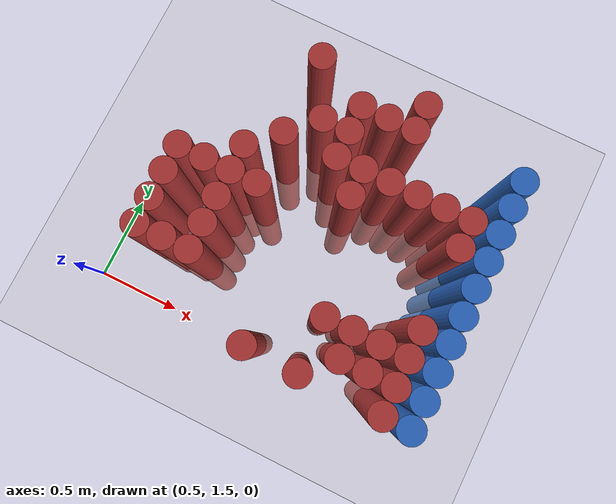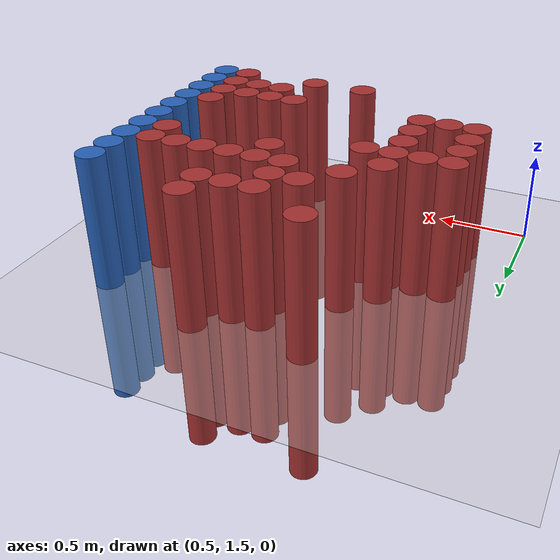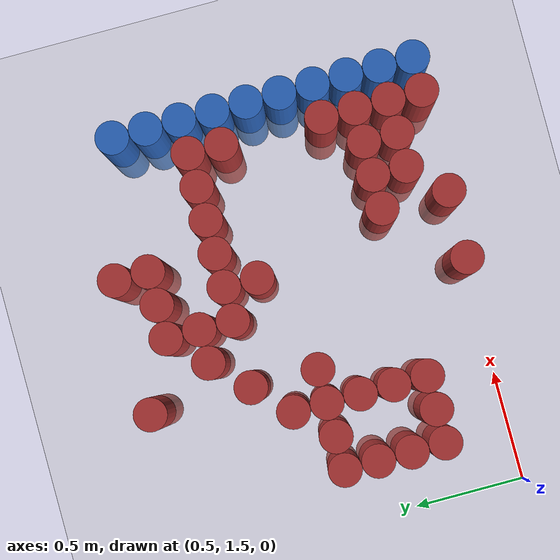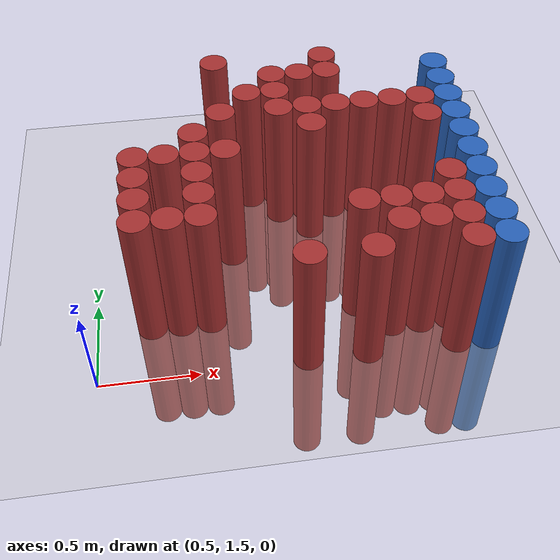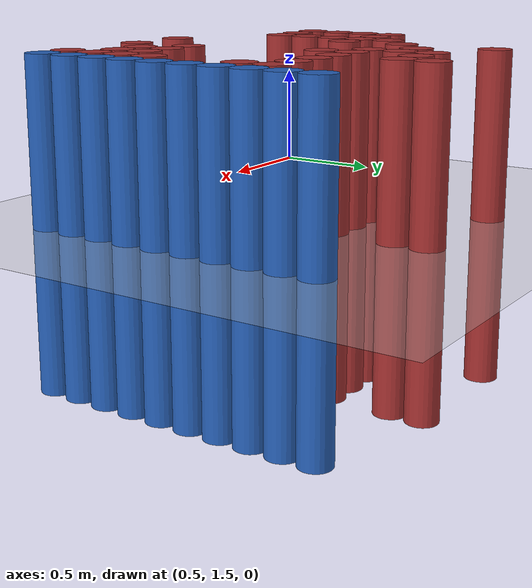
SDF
<sdf version="1.6">
 <world name="default">
  <model name="ground_plane">
   <static>1</static>
   <link name="link">
    <collision name="collision">
     <geometry><plane><normal>0 0 1</normal><size>100 100</size></plane></geometry>
     <surface><friction><ode><mu>100</mu><mu2>50</mu2></ode></friction></surface>
    </collision>
    <visual name="visual">
     <cast_shadows>0</cast_shadows>
     <geometry><plane><normal>0 0 1</normal><size>100 100</size></plane></geometry>
     <material>
      <script><uri>file://media/materials/scripts/gazebo.material</uri><name>Gazebo/Grey</name></script>
     </material>
    </visual>
   </link>
  </model>
  <model name="unit_cylinder_173">
   <static>1</static>
   <pose>0.775000 1.825000 0.000000 0.000000 0.000000 0.000000</pose>
   <link name="link">
    <inertial>
     <mass>1</mass>
     <inertia><ixx>0.145833</ixx><ixy>0</ixy><ixz>0</ixz><iyy>0.145833</iyy><iyz>0</iyz><izz>0.125</izz></inertia>
    </inertial>
    <collision name="collision">
     <geometry><cylinder><radius>0.075000</radius><length>1.5</length></cylinder></geometry>
    </collision>
    <visual name="visual">
     <geometry><cylinder><radius>0.075000</radius><length>1.5</length></cylinder></geometry>
     <material>
      <ambient>0.648000 0.192000 0.192000 1</ambient>
      <diffuse>0.648000 0.192000 0.192000 1</diffuse>
     </material>
     <material>
      <script><name>Gazebo/Grey</name><uri>file://media/materials/scripts/gazebo.material</uri></script>
     </material>
    </visual>
   </link>
  </model>
  <model name="unit_cylinder_174">
   <static>1</static>
   <pose>0.775000 1.975000 0.000000 0.000000 0.000000 0.000000</pose>
   <link name="link">
    <inertial>
     <mass>1</mass>
     <inertia><ixx>0.145833</ixx><ixy>0</ixy><ixz>0</ixz><iyy>0.145833</iyy><iyz>0</iyz><izz>0.125</izz></inertia>
    </inertial>
    <collision name="collision">
     <geometry><cylinder><radius>0.075000</radius><length>1.5</length></cylinder></geometry>
    </collision>
    <visual name="visual">
     <geometry><cylinder><radius>0.075000</radius><length>1.5</length></cylinder></geometry>
     <material>
      <ambient>0.648000 0.192000 0.192000 1</ambient>
      <diffuse>0.648000 0.192000 0.192000 1</diffuse>
     </material>
     <material>
      <script><name>Gazebo/Grey</name><uri>file://media/materials/scripts/gazebo.material</uri></script>
     </material>
    </visual>
   </link>
  </model>
  <model name="unit_cylinder_175">
   <static>1</static>
   <pose>0.775000 2.125000 0.000000 0.000000 0.000000 0.000000</pose>
   <link name="link">
    <inertial>
     <mass>1</mass>
     <inertia><ixx>0.145833</ixx><ixy>0</ixy><ixz>0</ixz><iyy>0.145833</iyy><iyz>0</iyz><izz>0.125</izz></inertia>
    </inertial>
    <collision name="collision">
     <geometry><cylinder><radius>0.075000</radius><length>1.5</length></cylinder></geometry>
    </collision>
    <visual name="visual">
     <geometry><cylinder><radius>0.075000</radius><length>1.5</length></cylinder></geometry>
     <material>
      <ambient>0.648000 0.192000 0.192000 1</ambient>
      <diffuse>0.648000 0.192000 0.192000 1</diffuse>
     </material>
     <material>
      <script><name>Gazebo/Grey</name><uri>file://media/materials/scripts/gazebo.material</uri></script>
     </material>
    </visual>
   </link>
  </model>
  <model name="unit_cylinder_176">
   <static>1</static>
   <pose>0.775000 2.275000 0.000000 0.000000 0.000000 0.000000</pose>
   <link name="link">
    <inertial>
     <mass>1</mass>
     <inertia><ixx>0.145833</ixx><ixy>0</ixy><ixz>0</ixz><iyy>0.145833</iyy><iyz>0</iyz><izz>0.125</izz></inertia>
    </inertial>
    <collision name="collision">
     <geometry><cylinder><radius>0.075000</radius><length>1.5</length></cylinder></geometry>
    </collision>
    <visual name="visual">
     <geometry><cylinder><radius>0.075000</radius><length>1.5</length></cylinder></geometry>
     <material>
      <ambient>0.648000 0.192000 0.192000 1</ambient>
      <diffuse>0.648000 0.192000 0.192000 1</diffuse>
     </material>
     <material>
      <script><name>Gazebo/Grey</name><uri>file://media/materials/scripts/gazebo.material</uri></script>
     </material>
    </visual>
   </link>
  </model>
  <model name="unit_cylinder_177">
   <static>1</static>
   <pose>0.925000 1.825000 0.000000 0.000000 0.000000 0.000000</pose>
   <link name="link">
    <inertial>
     <mass>1</mass>
     <inertia><ixx>0.145833</ixx><ixy>0</ixy><ixz>0</ixz><iyy>0.145833</iyy><iyz>0</iyz><izz>0.125</izz></inertia>
    </inertial>
    <collision name="collision">
     <geometry><cylinder><radius>0.075000</radius><length>1.5</length></cylinder></geometry>
    </collision>
    <visual name="visual">
     <geometry><cylinder><radius>0.075000</radius><length>1.5</length></cylinder></geometry>
     <material>
      <ambient>0.648000 0.192000 0.192000 1</ambient>
      <diffuse>0.648000 0.192000 0.192000 1</diffuse>
     </material>
     <material>
      <script><name>Gazebo/Grey</name><uri>file://media/materials/scripts/gazebo.material</uri></script>
     </material>
    </visual>
   </link>
  </model>
  <model name="unit_cylinder_178">
   <static>1</static>
   <pose>0.925000 2.275000 0.000000 0.000000 0.000000 0.000000</pose>
   <link name="link">
    <inertial>
     <mass>1</mass>
     <inertia><ixx>0.145833</ixx><ixy>0</ixy><ixz>0</ixz><iyy>0.145833</iyy><iyz>0</iyz><izz>0.125</izz></inertia>
    </inertial>
    <collision name="collision">
     <geometry><cylinder><radius>0.075000</radius><length>1.5</length></cylinder></geometry>
    </collision>
    <visual name="visual">
     <geometry><cylinder><radius>0.075000</radius><length>1.5</length></cylinder></geometry>
     <material>
      <ambient>0.648000 0.192000 0.192000 1</ambient>
      <diffuse>0.648000 0.192000 0.192000 1</diffuse>
     </material>
     <material>
      <script><name>Gazebo/Grey</name><uri>file://media/materials/scripts/gazebo.material</uri></script>
     </material>
    </visual>
   </link>
  </model>
  <model name="unit_cylinder_179">
   <static>1</static>
   <pose>1.075000 1.825000 0.000000 0.000000 0.000000 0.000000</pose>
   <link name="link">
    <inertial>
     <mass>1</mass>
     <inertia><ixx>0.145833</ixx><ixy>0</ixy><ixz>0</ixz><iyy>0.145833</iyy><iyz>0</iyz><izz>0.125</izz></inertia>
    </inertial>
    <collision name="collision">
     <geometry><cylinder><radius>0.075000</radius><length>1.5</length></cylinder></geometry>
    </collision>
    <visual name="visual">
     <geometry><cylinder><radius>0.075000</radius><length>1.5</length></cylinder></geometry>
     <material>
      <ambient>0.648000 0.192000 0.192000 1</ambient>
      <diffuse>0.648000 0.192000 0.192000 1</diffuse>
     </material>
     <material>
      <script><name>Gazebo/Grey</name><uri>file://media/materials/scripts/gazebo.material</uri></script>
     </material>
    </visual>
   </link>
  </model>
  <model name="unit_cylinder_180">
   <static>1</static>
   <pose>1.075000 1.975000 0.000000 0.000000 0.000000 0.000000</pose>
   <link name="link">
    <inertial>
     <mass>1</mass>
     <inertia><ixx>0.145833</ixx><ixy>0</ixy><ixz>0</ixz><iyy>0.145833</iyy><iyz>0</iyz><izz>0.125</izz></inertia>
    </inertial>
    <collision name="collision">
     <geometry><cylinder><radius>0.075000</radius><length>1.5</length></cylinder></geometry>
    </collision>
    <visual name="visual">
     <geometry><cylinder><radius>0.075000</radius><length>1.5</length></cylinder></geometry>
     <material>
      <ambient>0.648000 0.192000 0.192000 1</ambient>
      <diffuse>0.648000 0.192000 0.192000 1</diffuse>
     </material>
     <material>
      <script><name>Gazebo/Grey</name><uri>file://media/materials/scripts/gazebo.material</uri></script>
     </material>
    </visual>
   </link>
  </model>
  <model name="unit_cylinder_181">
   <static>1</static>
   <pose>1.075000 2.125000 0.000000 0.000000 0.000000 0.000000</pose>
   <link name="link">
    <inertial>
     <mass>1</mass>
     <inertia><ixx>0.145833</ixx><ixy>0</ixy><ixz>0</ixz><iyy>0.145833</iyy><iyz>0</iyz><izz>0.125</izz></inertia>
    </inertial>
    <collision name="collision">
     <geometry><cylinder><radius>0.075000</radius><length>1.5</length></cylinder></geometry>
    </collision>
    <visual name="visual">
     <geometry><cylinder><radius>0.075000</radius><length>1.5</length></cylinder></geometry>
     <material>
      <ambient>0.648000 0.192000 0.192000 1</ambient>
      <diffuse>0.648000 0.192000 0.192000 1</diffuse>
     </material>
     <material>
      <script><name>Gazebo/Grey</name><uri>file://media/materials/scripts/gazebo.material</uri></script>
     </material>
    </visual>
   </link>
  </model>
  <model name="unit_cylinder_182">
   <static>1</static>
   <pose>1.075000 2.275000 0.000000 0.000000 0.000000 0.000000</pose>
   <link name="link">
    <inertial>
     <mass>1</mass>
     <inertia><ixx>0.145833</ixx><ixy>0</ixy><ixz>0</ixz><iyy>0.145833</iyy><iyz>0</iyz><izz>0.125</izz></inertia>
    </inertial>
    <collision name="collision">
     <geometry><cylinder><radius>0.075000</radius><length>1.5</length></cylinder></geometry>
    </collision>
    <visual name="visual">
     <geometry><cylinder><radius>0.075000</radius><length>1.5</length></cylinder></geometry>
     <material>
      <ambient>0.648000 0.192000 0.192000 1</ambient>
      <diffuse>0.648000 0.192000 0.192000 1</diffuse>
     </material>
     <material>
      <script><name>Gazebo/Grey</name><uri>file://media/materials/scripts/gazebo.material</uri></script>
     </material>
    </visual>
   </link>
  </model>
  <model name="unit_cylinder_183">
   <static>1</static>
   <pose>1.075000 2.425000 0.000000 0.000000 0.000000 0.000000</pose>
   <link name="link">
    <inertial>
     <mass>1</mass>
     <inertia><ixx>0.145833</ixx><ixy>0</ixy><ixz>0</ixz><iyy>0.145833</iyy><iyz>0</iyz><izz>0.125</izz></inertia>
    </inertial>
    <collision name="collision">
     <geometry><cylinder><radius>0.075000</radius><length>1.5</length></cylinder></geometry>
    </collision>
    <visual name="visual">
     <geometry><cylinder><radius>0.075000</radius><length>1.5</length></cylinder></geometry>
     <material>
      <ambient>0.648000 0.192000 0.192000 1</ambient>
      <diffuse>0.648000 0.192000 0.192000 1</diffuse>
     </material>
     <material>
      <script><name>Gazebo/Grey</name><uri>file://media/materials/scripts/gazebo.material</uri></script>
     </material>
    </visual>
   </link>
  </model>
  <model name="unit_cylinder_190">
   <static>1</static>
   <pose>1.225000 2.275000 0.000000 0.000000 0.000000 0.000000</pose>
   <link name="link">
    <inertial>
     <mass>1</mass>
     <inertia><ixx>0.145833</ixx><ixy>0</ixy><ixz>0</ixz><iyy>0.145833</iyy><iyz>0</iyz><izz>0.125</izz></inertia>
    </inertial>
    <collision name="collision">
     <geometry><cylinder><radius>0.075000</radius><length>1.5</length></cylinder></geometry>
    </collision>
    <visual name="visual">
     <geometry><cylinder><radius>0.075000</radius><length>1.5</length></cylinder></geometry>
     <material>
      <ambient>0.648000 0.192000 0.192000 1</ambient>
      <diffuse>0.648000 0.192000 0.192000 1</diffuse>
     </material>
     <material>
      <script><name>Gazebo/Grey</name><uri>file://media/materials/scripts/gazebo.material</uri></script>
     </material>
    </visual>
   </link>
  </model>
  <model name="unit_cylinder_191">
   <static>1</static>
   <pose>1.225000 2.575000 0.000000 0.000000 0.000000 0.000000</pose>
   <link name="link">
    <inertial>
     <mass>1</mass>
     <inertia><ixx>0.145833</ixx><ixy>0</ixy><ixz>0</ixz><iyy>0.145833</iyy><iyz>0</iyz><izz>0.125</izz></inertia>
    </inertial>
    <collision name="collision">
     <geometry><cylinder><radius>0.075000</radius><length>1.5</length></cylinder></geometry>
    </collision>
    <visual name="visual">
     <geometry><cylinder><radius>0.075000</radius><length>1.5</length></cylinder></geometry>
     <material>
      <ambient>0.648000 0.192000 0.192000 1</ambient>
      <diffuse>0.648000 0.192000 0.192000 1</diffuse>
     </material>
     <material>
      <script><name>Gazebo/Grey</name><uri>file://media/materials/scripts/gazebo.material</uri></script>
     </material>
    </visual>
   </link>
  </model>
  <model name="unit_cylinder_192">
   <static>1</static>
   <pose>1.225000 3.025000 0.000000 0.000000 0.000000 0.000000</pose>
   <link name="link">
    <inertial>
     <mass>1</mass>
     <inertia><ixx>0.145833</ixx><ixy>0</ixy><ixz>0</ixz><iyy>0.145833</iyy><iyz>0</iyz><izz>0.125</izz></inertia>
    </inertial>
    <collision name="collision">
     <geometry><cylinder><radius>0.075000</radius><length>1.5</length></cylinder></geometry>
    </collision>
    <visual name="visual">
     <geometry><cylinder><radius>0.075000</radius><length>1.5</length></cylinder></geometry>
     <material>
      <ambient>0.648000 0.192000 0.192000 1</ambient>
      <diffuse>0.648000 0.192000 0.192000 1</diffuse>
     </material>
     <material>
      <script><name>Gazebo/Grey</name><uri>file://media/materials/scripts/gazebo.material</uri></script>
     </material>
    </visual>
   </link>
  </model>
  <model name="unit_cylinder_196">
   <static>1</static>
   <pose>1.375000 2.725000 0.000000 0.000000 0.000000 0.000000</pose>
   <link name="link">
    <inertial>
     <mass>1</mass>
     <inertia><ixx>0.145833</ixx><ixy>0</ixy><ixz>0</ixz><iyy>0.145833</iyy><iyz>0</iyz><izz>0.125</izz></inertia>
    </inertial>
    <collision name="collision">
     <geometry><cylinder><radius>0.075000</radius><length>1.5</length></cylinder></geometry>
    </collision>
    <visual name="visual">
     <geometry><cylinder><radius>0.075000</radius><length>1.5</length></cylinder></geometry>
     <material>
      <ambient>0.648000 0.192000 0.192000 1</ambient>
      <diffuse>0.648000 0.192000 0.192000 1</diffuse>
     </material>
     <material>
      <script><name>Gazebo/Grey</name><uri>file://media/materials/scripts/gazebo.material</uri></script>
     </material>
    </visual>
   </link>
  </model>
  <model name="unit_cylinder_206">
   <static>1</static>
   <pose>1.525000 1.525000 0.000000 0.000000 0.000000 0.000000</pose>
   <link name="link">
    <inertial>
     <mass>1</mass>
     <inertia><ixx>0.145833</ixx><ixy>0</ixy><ixz>0</ixz><iyy>0.145833</iyy><iyz>0</iyz><izz>0.125</izz></inertia>
    </inertial>
    <collision name="collision">
     <geometry><cylinder><radius>0.075000</radius><length>1.5</length></cylinder></geometry>
    </collision>
    <visual name="visual">
     <geometry><cylinder><radius>0.075000</radius><length>1.5</length></cylinder></geometry>
     <material>
      <ambient>0.648000 0.192000 0.192000 1</ambient>
      <diffuse>0.648000 0.192000 0.192000 1</diffuse>
     </material>
     <material>
      <script><name>Gazebo/Grey</name><uri>file://media/materials/scripts/gazebo.material</uri></script>
     </material>
    </visual>
   </link>
  </model>
  <model name="unit_cylinder_207">
   <static>1</static>
   <pose>1.525000 2.575000 0.000000 0.000000 0.000000 0.000000</pose>
   <link name="link">
    <inertial>
     <mass>1</mass>
     <inertia><ixx>0.145833</ixx><ixy>0</ixy><ixz>0</ixz><iyy>0.145833</iyy><iyz>0</iyz><izz>0.125</izz></inertia>
    </inertial>
    <collision name="collision">
     <geometry><cylinder><radius>0.075000</radius><length>1.5</length></cylinder></geometry>
    </collision>
    <visual name="visual">
     <geometry><cylinder><radius>0.075000</radius><length>1.5</length></cylinder></geometry>
     <material>
      <ambient>0.648000 0.192000 0.192000 1</ambient>
      <diffuse>0.648000 0.192000 0.192000 1</diffuse>
     </material>
     <material>
      <script><name>Gazebo/Grey</name><uri>file://media/materials/scripts/gazebo.material</uri></script>
     </material>
    </visual>
   </link>
  </model>
  <model name="unit_cylinder_208">
   <static>1</static>
   <pose>1.525000 2.725000 0.000000 0.000000 0.000000 0.000000</pose>
   <link name="link">
    <inertial>
     <mass>1</mass>
     <inertia><ixx>0.145833</ixx><ixy>0</ixy><ixz>0</ixz><iyy>0.145833</iyy><iyz>0</iyz><izz>0.125</izz></inertia>
    </inertial>
    <collision name="collision">
     <geometry><cylinder><radius>0.075000</radius><length>1.5</length></cylinder></geometry>
    </collision>
    <visual name="visual">
     <geometry><cylinder><radius>0.075000</radius><length>1.5</length></cylinder></geometry>
     <material>
      <ambient>0.648000 0.192000 0.192000 1</ambient>
      <diffuse>0.648000 0.192000 0.192000 1</diffuse>
     </material>
     <material>
      <script><name>Gazebo/Grey</name><uri>file://media/materials/scripts/gazebo.material</uri></script>
     </material>
    </visual>
   </link>
  </model>
  <model name="unit_cylinder_209">
   <static>1</static>
   <pose>1.525000 2.875000 0.000000 0.000000 0.000000 0.000000</pose>
   <link name="link">
    <inertial>
     <mass>1</mass>
     <inertia><ixx>0.145833</ixx><ixy>0</ixy><ixz>0</ixz><iyy>0.145833</iyy><iyz>0</iyz><izz>0.125</izz></inertia>
    </inertial>
    <collision name="collision">
     <geometry><cylinder><radius>0.075000</radius><length>1.5</length></cylinder></geometry>
    </collision>
    <visual name="visual">
     <geometry><cylinder><radius>0.075000</radius><length>1.5</length></cylinder></geometry>
     <material>
      <ambient>0.648000 0.192000 0.192000 1</ambient>
      <diffuse>0.648000 0.192000 0.192000 1</diffuse>
     </material>
     <material>
      <script><name>Gazebo/Grey</name><uri>file://media/materials/scripts/gazebo.material</uri></script>
     </material>
    </visual>
   </link>
  </model>
  <model name="unit_cylinder_216">
   <static>1</static>
   <pose>1.675000 2.425000 0.000000 0.000000 0.000000 0.000000</pose>
   <link name="link">
    <inertial>
     <mass>1</mass>
     <inertia><ixx>0.145833</ixx><ixy>0</ixy><ixz>0</ixz><iyy>0.145833</iyy><iyz>0</iyz><izz>0.125</izz></inertia>
    </inertial>
    <collision name="collision">
     <geometry><cylinder><radius>0.075000</radius><length>1.5</length></cylinder></geometry>
    </collision>
    <visual name="visual">
     <geometry><cylinder><radius>0.075000</radius><length>1.5</length></cylinder></geometry>
     <material>
      <ambient>0.648000 0.192000 0.192000 1</ambient>
      <diffuse>0.648000 0.192000 0.192000 1</diffuse>
     </material>
     <material>
      <script><name>Gazebo/Grey</name><uri>file://media/materials/scripts/gazebo.material</uri></script>
     </material>
    </visual>
   </link>
  </model>
  <model name="unit_cylinder_217">
   <static>1</static>
   <pose>1.675000 2.575000 0.000000 0.000000 0.000000 0.000000</pose>
   <link name="link">
    <inertial>
     <mass>1</mass>
     <inertia><ixx>0.145833</ixx><ixy>0</ixy><ixz>0</ixz><iyy>0.145833</iyy><iyz>0</iyz><izz>0.125</izz></inertia>
    </inertial>
    <collision name="collision">
     <geometry><cylinder><radius>0.075000</radius><length>1.5</length></cylinder></geometry>
    </collision>
    <visual name="visual">
     <geometry><cylinder><radius>0.075000</radius><length>1.5</length></cylinder></geometry>
     <material>
      <ambient>0.648000 0.192000 0.192000 1</ambient>
      <diffuse>0.648000 0.192000 0.192000 1</diffuse>
     </material>
     <material>
      <script><name>Gazebo/Grey</name><uri>file://media/materials/scripts/gazebo.material</uri></script>
     </material>
    </visual>
   </link>
  </model>
  <model name="unit_cylinder_218">
   <static>1</static>
   <pose>1.675000 2.875000 0.000000 0.000000 0.000000 0.000000</pose>
   <link name="link">
    <inertial>
     <mass>1</mass>
     <inertia><ixx>0.145833</ixx><ixy>0</ixy><ixz>0</ixz><iyy>0.145833</iyy><iyz>0</iyz><izz>0.125</izz></inertia>
    </inertial>
    <collision name="collision">
     <geometry><cylinder><radius>0.075000</radius><length>1.5</length></cylinder></geometry>
    </collision>
    <visual name="visual">
     <geometry><cylinder><radius>0.075000</radius><length>1.5</length></cylinder></geometry>
     <material>
      <ambient>0.648000 0.192000 0.192000 1</ambient>
      <diffuse>0.648000 0.192000 0.192000 1</diffuse>
     </material>
     <material>
      <script><name>Gazebo/Grey</name><uri>file://media/materials/scripts/gazebo.material</uri></script>
     </material>
    </visual>
   </link>
  </model>
  <model name="unit_cylinder_223">
   <static>1</static>
   <pose>1.825000 1.525000 0.000000 0.000000 0.000000 0.000000</pose>
   <link name="link">
    <inertial>
     <mass>1</mass>
     <inertia><ixx>0.145833</ixx><ixy>0</ixy><ixz>0</ixz><iyy>0.145833</iyy><iyz>0</iyz><izz>0.125</izz></inertia>
    </inertial>
    <collision name="collision">
     <geometry><cylinder><radius>0.075000</radius><length>1.5</length></cylinder></geometry>
    </collision>
    <visual name="visual">
     <geometry><cylinder><radius>0.075000</radius><length>1.5</length></cylinder></geometry>
     <material>
      <ambient>0.648000 0.192000 0.192000 1</ambient>
      <diffuse>0.648000 0.192000 0.192000 1</diffuse>
     </material>
     <material>
      <script><name>Gazebo/Grey</name><uri>file://media/materials/scripts/gazebo.material</uri></script>
     </material>
    </visual>
   </link>
  </model>
  <model name="unit_cylinder_224">
   <static>1</static>
   <pose>1.825000 1.825000 0.000000 0.000000 0.000000 0.000000</pose>
   <link name="link">
    <inertial>
     <mass>1</mass>
     <inertia><ixx>0.145833</ixx><ixy>0</ixy><ixz>0</ixz><iyy>0.145833</iyy><iyz>0</iyz><izz>0.125</izz></inertia>
    </inertial>
    <collision name="collision">
     <geometry><cylinder><radius>0.075000</radius><length>1.5</length></cylinder></geometry>
    </collision>
    <visual name="visual">
     <geometry><cylinder><radius>0.075000</radius><length>1.5</length></cylinder></geometry>
     <material>
      <ambient>0.648000 0.192000 0.192000 1</ambient>
      <diffuse>0.648000 0.192000 0.192000 1</diffuse>
     </material>
     <material>
      <script><name>Gazebo/Grey</name><uri>file://media/materials/scripts/gazebo.material</uri></script>
     </material>
    </visual>
   </link>
  </model>
  <model name="unit_cylinder_225">
   <static>1</static>
   <pose>1.825000 2.575000 0.000000 0.000000 0.000000 0.000000</pose>
   <link name="link">
    <inertial>
     <mass>1</mass>
     <inertia><ixx>0.145833</ixx><ixy>0</ixy><ixz>0</ixz><iyy>0.145833</iyy><iyz>0</iyz><izz>0.125</izz></inertia>
    </inertial>
    <collision name="collision">
     <geometry><cylinder><radius>0.075000</radius><length>1.5</length></cylinder></geometry>
    </collision>
    <visual name="visual">
     <geometry><cylinder><radius>0.075000</radius><length>1.5</length></cylinder></geometry>
     <material>
      <ambient>0.648000 0.192000 0.192000 1</ambient>
      <diffuse>0.648000 0.192000 0.192000 1</diffuse>
     </material>
     <material>
      <script><name>Gazebo/Grey</name><uri>file://media/materials/scripts/gazebo.material</uri></script>
     </material>
    </visual>
   </link>
  </model>
  <model name="unit_cylinder_226">
   <static>1</static>
   <pose>1.825000 2.875000 0.000000 0.000000 0.000000 0.000000</pose>
   <link name="link">
    <inertial>
     <mass>1</mass>
     <inertia><ixx>0.145833</ixx><ixy>0</ixy><ixz>0</ixz><iyy>0.145833</iyy><iyz>0</iyz><izz>0.125</izz></inertia>
    </inertial>
    <collision name="collision">
     <geometry><cylinder><radius>0.075000</radius><length>1.5</length></cylinder></geometry>
    </collision>
    <visual name="visual">
     <geometry><cylinder><radius>0.075000</radius><length>1.5</length></cylinder></geometry>
     <material>
      <ambient>0.648000 0.192000 0.192000 1</ambient>
      <diffuse>0.648000 0.192000 0.192000 1</diffuse>
     </material>
     <material>
      <script><name>Gazebo/Grey</name><uri>file://media/materials/scripts/gazebo.material</uri></script>
     </material>
    </visual>
   </link>
  </model>
  <model name="unit_cylinder_227">
   <static>1</static>
   <pose>1.825000 3.025000 0.000000 0.000000 0.000000 0.000000</pose>
   <link name="link">
    <inertial>
     <mass>1</mass>
     <inertia><ixx>0.145833</ixx><ixy>0</ixy><ixz>0</ixz><iyy>0.145833</iyy><iyz>0</iyz><izz>0.125</izz></inertia>
    </inertial>
    <collision name="collision">
     <geometry><cylinder><radius>0.075000</radius><length>1.5</length></cylinder></geometry>
    </collision>
    <visual name="visual">
     <geometry><cylinder><radius>0.075000</radius><length>1.5</length></cylinder></geometry>
     <material>
      <ambient>0.648000 0.192000 0.192000 1</ambient>
      <diffuse>0.648000 0.192000 0.192000 1</diffuse>
     </material>
     <material>
      <script><name>Gazebo/Grey</name><uri>file://media/materials/scripts/gazebo.material</uri></script>
     </material>
    </visual>
   </link>
  </model>
  <model name="unit_cylinder_230">
   <static>1</static>
   <pose>1.975000 1.675000 0.000000 0.000000 0.000000 0.000000</pose>
   <link name="link">
    <inertial>
     <mass>1</mass>
     <inertia><ixx>0.145833</ixx><ixy>0</ixy><ixz>0</ixz><iyy>0.145833</iyy><iyz>0</iyz><izz>0.125</izz></inertia>
    </inertial>
    <collision name="collision">
     <geometry><cylinder><radius>0.075000</radius><length>1.5</length></cylinder></geometry>
    </collision>
    <visual name="visual">
     <geometry><cylinder><radius>0.075000</radius><length>1.5</length></cylinder></geometry>
     <material>
      <ambient>0.648000 0.192000 0.192000 1</ambient>
      <diffuse>0.648000 0.192000 0.192000 1</diffuse>
     </material>
     <material>
      <script><name>Gazebo/Grey</name><uri>file://media/materials/scripts/gazebo.material</uri></script>
     </material>
    </visual>
   </link>
  </model>
  <model name="unit_cylinder_231">
   <static>1</static>
   <pose>1.975000 1.825000 0.000000 0.000000 0.000000 0.000000</pose>
   <link name="link">
    <inertial>
     <mass>1</mass>
     <inertia><ixx>0.145833</ixx><ixy>0</ixy><ixz>0</ixz><iyy>0.145833</iyy><iyz>0</iyz><izz>0.125</izz></inertia>
    </inertial>
    <collision name="collision">
     <geometry><cylinder><radius>0.075000</radius><length>1.5</length></cylinder></geometry>
    </collision>
    <visual name="visual">
     <geometry><cylinder><radius>0.075000</radius><length>1.5</length></cylinder></geometry>
     <material>
      <ambient>0.648000 0.192000 0.192000 1</ambient>
      <diffuse>0.648000 0.192000 0.192000 1</diffuse>
     </material>
     <material>
      <script><name>Gazebo/Grey</name><uri>file://media/materials/scripts/gazebo.material</uri></script>
     </material>
    </visual>
   </link>
  </model>
  <model name="unit_cylinder_232">
   <static>1</static>
   <pose>1.975000 2.575000 0.000000 0.000000 0.000000 0.000000</pose>
   <link name="link">
    <inertial>
     <mass>1</mass>
     <inertia><ixx>0.145833</ixx><ixy>0</ixy><ixz>0</ixz><iyy>0.145833</iyy><iyz>0</iyz><izz>0.125</izz></inertia>
    </inertial>
    <collision name="collision">
     <geometry><cylinder><radius>0.075000</radius><length>1.5</length></cylinder></geometry>
    </collision>
    <visual name="visual">
     <geometry><cylinder><radius>0.075000</radius><length>1.5</length></cylinder></geometry>
     <material>
      <ambient>0.648000 0.192000 0.192000 1</ambient>
      <diffuse>0.648000 0.192000 0.192000 1</diffuse>
     </material>
     <material>
      <script><name>Gazebo/Grey</name><uri>file://media/materials/scripts/gazebo.material</uri></script>
     </material>
    </visual>
   </link>
  </model>
  <model name="unit_cylinder_237">
   <static>1</static>
   <pose>2.125000 1.675000 0.000000 0.000000 0.000000 0.000000</pose>
   <link name="link">
    <inertial>
     <mass>1</mass>
     <inertia><ixx>0.145833</ixx><ixy>0</ixy><ixz>0</ixz><iyy>0.145833</iyy><iyz>0</iyz><izz>0.125</izz></inertia>
    </inertial>
    <collision name="collision">
     <geometry><cylinder><radius>0.075000</radius><length>1.5</length></cylinder></geometry>
    </collision>
    <visual name="visual">
     <geometry><cylinder><radius>0.075000</radius><length>1.5</length></cylinder></geometry>
     <material>
      <ambient>0.648000 0.192000 0.192000 1</ambient>
      <diffuse>0.648000 0.192000 0.192000 1</diffuse>
     </material>
     <material>
      <script><name>Gazebo/Grey</name><uri>file://media/materials/scripts/gazebo.material</uri></script>
     </material>
    </visual>
   </link>
  </model>
  <model name="unit_cylinder_238">
   <static>1</static>
   <pose>2.125000 1.825000 0.000000 0.000000 0.000000 0.000000</pose>
   <link name="link">
    <inertial>
     <mass>1</mass>
     <inertia><ixx>0.145833</ixx><ixy>0</ixy><ixz>0</ixz><iyy>0.145833</iyy><iyz>0</iyz><izz>0.125</izz></inertia>
    </inertial>
    <collision name="collision">
     <geometry><cylinder><radius>0.075000</radius><length>1.5</length></cylinder></geometry>
    </collision>
    <visual name="visual">
     <geometry><cylinder><radius>0.075000</radius><length>1.5</length></cylinder></geometry>
     <material>
      <ambient>0.648000 0.192000 0.192000 1</ambient>
      <diffuse>0.648000 0.192000 0.192000 1</diffuse>
     </material>
     <material>
      <script><name>Gazebo/Grey</name><uri>file://media/materials/scripts/gazebo.material</uri></script>
     </material>
    </visual>
   </link>
  </model>
  <model name="unit_cylinder_239">
   <static>1</static>
   <pose>2.125000 2.575000 0.000000 0.000000 0.000000 0.000000</pose>
   <link name="link">
    <inertial>
     <mass>1</mass>
     <inertia><ixx>0.145833</ixx><ixy>0</ixy><ixz>0</ixz><iyy>0.145833</iyy><iyz>0</iyz><izz>0.125</izz></inertia>
    </inertial>
    <collision name="collision">
     <geometry><cylinder><radius>0.075000</radius><length>1.5</length></cylinder></geometry>
    </collision>
    <visual name="visual">
     <geometry><cylinder><radius>0.075000</radius><length>1.5</length></cylinder></geometry>
     <material>
      <ambient>0.648000 0.192000 0.192000 1</ambient>
      <diffuse>0.648000 0.192000 0.192000 1</diffuse>
     </material>
     <material>
      <script><name>Gazebo/Grey</name><uri>file://media/materials/scripts/gazebo.material</uri></script>
     </material>
    </visual>
   </link>
  </model>
  <model name="unit_cylinder_250">
   <static>1</static>
   <pose>2.275000 1.525000 0.000000 0.000000 0.000000 0.000000</pose>
   <link name="link">
    <inertial>
     <mass>1</mass>
     <inertia><ixx>0.145833</ixx><ixy>0</ixy><ixz>0</ixz><iyy>0.145833</iyy><iyz>0</iyz><izz>0.125</izz></inertia>
    </inertial>
    <collision name="collision">
     <geometry><cylinder><radius>0.075000</radius><length>1.5</length></cylinder></geometry>
    </collision>
    <visual name="visual">
     <geometry><cylinder><radius>0.075000</radius><length>1.5</length></cylinder></geometry>
     <material>
      <ambient>0.648000 0.192000 0.192000 1</ambient>
      <diffuse>0.648000 0.192000 0.192000 1</diffuse>
     </material>
     <material>
      <script><name>Gazebo/Grey</name><uri>file://media/materials/scripts/gazebo.material</uri></script>
     </material>
    </visual>
   </link>
  </model>
  <model name="unit_cylinder_251">
   <static>1</static>
   <pose>2.275000 1.675000 0.000000 0.000000 0.000000 0.000000</pose>
   <link name="link">
    <inertial>
     <mass>1</mass>
     <inertia><ixx>0.145833</ixx><ixy>0</ixy><ixz>0</ixz><iyy>0.145833</iyy><iyz>0</iyz><izz>0.125</izz></inertia>
    </inertial>
    <collision name="collision">
     <geometry><cylinder><radius>0.075000</radius><length>1.5</length></cylinder></geometry>
    </collision>
    <visual name="visual">
     <geometry><cylinder><radius>0.075000</radius><length>1.5</length></cylinder></geometry>
     <material>
      <ambient>0.648000 0.192000 0.192000 1</ambient>
      <diffuse>0.648000 0.192000 0.192000 1</diffuse>
     </material>
     <material>
      <script><name>Gazebo/Grey</name><uri>file://media/materials/scripts/gazebo.material</uri></script>
     </material>
    </visual>
   </link>
  </model>
  <model name="unit_cylinder_252">
   <static>1</static>
   <pose>2.275000 1.825000 0.000000 0.000000 0.000000 0.000000</pose>
   <link name="link">
    <inertial>
     <mass>1</mass>
     <inertia><ixx>0.145833</ixx><ixy>0</ixy><ixz>0</ixz><iyy>0.145833</iyy><iyz>0</iyz><izz>0.125</izz></inertia>
    </inertial>
    <collision name="collision">
     <geometry><cylinder><radius>0.075000</radius><length>1.5</length></cylinder></geometry>
    </collision>
    <visual name="visual">
     <geometry><cylinder><radius>0.075000</radius><length>1.5</length></cylinder></geometry>
     <material>
      <ambient>0.648000 0.192000 0.192000 1</ambient>
      <diffuse>0.648000 0.192000 0.192000 1</diffuse>
     </material>
     <material>
      <script><name>Gazebo/Grey</name><uri>file://media/materials/scripts/gazebo.material</uri></script>
     </material>
    </visual>
   </link>
  </model>
  <model name="unit_cylinder_253">
   <static>1</static>
   <pose>2.275000 1.975000 0.000000 0.000000 0.000000 0.000000</pose>
   <link name="link">
    <inertial>
     <mass>1</mass>
     <inertia><ixx>0.145833</ixx><ixy>0</ixy><ixz>0</ixz><iyy>0.145833</iyy><iyz>0</iyz><izz>0.125</izz></inertia>
    </inertial>
    <collision name="collision">
     <geometry><cylinder><radius>0.075000</radius><length>1.5</length></cylinder></geometry>
    </collision>
    <visual name="visual">
     <geometry><cylinder><radius>0.075000</radius><length>1.5</length></cylinder></geometry>
     <material>
      <ambient>0.648000 0.192000 0.192000 1</ambient>
      <diffuse>0.648000 0.192000 0.192000 1</diffuse>
     </material>
     <material>
      <script><name>Gazebo/Grey</name><uri>file://media/materials/scripts/gazebo.material</uri></script>
     </material>
    </visual>
   </link>
  </model>
  <model name="unit_cylinder_254">
   <static>1</static>
   <pose>2.275000 2.425000 0.000000 0.000000 0.000000 0.000000</pose>
   <link name="link">
    <inertial>
     <mass>1</mass>
     <inertia><ixx>0.145833</ixx><ixy>0</ixy><ixz>0</ixz><iyy>0.145833</iyy><iyz>0</iyz><izz>0.125</izz></inertia>
    </inertial>
    <collision name="collision">
     <geometry><cylinder><radius>0.075000</radius><length>1.5</length></cylinder></geometry>
    </collision>
    <visual name="visual">
     <geometry><cylinder><radius>0.075000</radius><length>1.5</length></cylinder></geometry>
     <material>
      <ambient>0.648000 0.192000 0.192000 1</ambient>
      <diffuse>0.648000 0.192000 0.192000 1</diffuse>
     </material>
     <material>
      <script><name>Gazebo/Grey</name><uri>file://media/materials/scripts/gazebo.material</uri></script>
     </material>
    </visual>
   </link>
  </model>
  <model name="unit_cylinder_255">
   <static>1</static>
   <pose>2.275000 2.575000 0.000000 0.000000 0.000000 0.000000</pose>
   <link name="link">
    <inertial>
     <mass>1</mass>
     <inertia><ixx>0.145833</ixx><ixy>0</ixy><ixz>0</ixz><iyy>0.145833</iyy><iyz>0</iyz><izz>0.125</izz></inertia>
    </inertial>
    <collision name="collision">
     <geometry><cylinder><radius>0.075000</radius><length>1.5</length></cylinder></geometry>
    </collision>
    <visual name="visual">
     <geometry><cylinder><radius>0.075000</radius><length>1.5</length></cylinder></geometry>
     <material>
      <ambient>0.648000 0.192000 0.192000 1</ambient>
      <diffuse>0.648000 0.192000 0.192000 1</diffuse>
     </material>
     <material>
      <script><name>Gazebo/Grey</name><uri>file://media/materials/scripts/gazebo.material</uri></script>
     </material>
    </visual>
   </link>
  </model>
  <model name="unit_cylinder_271">
   <static>1</static>
   <pose>2.425000 1.525000 0.000000 0.000000 0.000000 0.000000</pose>
   <link name="link">
    <inertial>
     <mass>1</mass>
     <inertia><ixx>0.145833</ixx><ixy>0</ixy><ixz>0</ixz><iyy>0.145833</iyy><iyz>0</iyz><izz>0.125</izz></inertia>
    </inertial>
    <collision name="collision">
     <geometry><cylinder><radius>0.075000</radius><length>1.5</length></cylinder></geometry>
    </collision>
    <visual name="visual">
     <geometry><cylinder><radius>0.075000</radius><length>1.5</length></cylinder></geometry>
     <material>
      <ambient>0.152000 0.379000 0.720000 1</ambient>
      <diffuse>0.152000 0.379000 0.720000 1</diffuse>
     </material>
     <material>
      <script><name>Gazebo/Grey</name><uri>file://media/materials/scripts/gazebo.material</uri></script>
     </material>
    </visual>
   </link>
  </model>
  <model name="unit_cylinder_272">
   <static>1</static>
   <pose>2.425000 1.675000 0.000000 0.000000 0.000000 0.000000</pose>
   <link name="link">
    <inertial>
     <mass>1</mass>
     <inertia><ixx>0.145833</ixx><ixy>0</ixy><ixz>0</ixz><iyy>0.145833</iyy><iyz>0</iyz><izz>0.125</izz></inertia>
    </inertial>
    <collision name="collision">
     <geometry><cylinder><radius>0.075000</radius><length>1.5</length></cylinder></geometry>
    </collision>
    <visual name="visual">
     <geometry><cylinder><radius>0.075000</radius><length>1.5</length></cylinder></geometry>
     <material>
      <ambient>0.152000 0.379000 0.720000 1</ambient>
      <diffuse>0.152000 0.379000 0.720000 1</diffuse>
     </material>
     <material>
      <script><name>Gazebo/Grey</name><uri>file://media/materials/scripts/gazebo.material</uri></script>
     </material>
    </visual>
   </link>
  </model>
  <model name="unit_cylinder_273">
   <static>1</static>
   <pose>2.425000 1.825000 0.000000 0.000000 0.000000 0.000000</pose>
   <link name="link">
    <inertial>
     <mass>1</mass>
     <inertia><ixx>0.145833</ixx><ixy>0</ixy><ixz>0</ixz><iyy>0.145833</iyy><iyz>0</iyz><izz>0.125</izz></inertia>
    </inertial>
    <collision name="collision">
     <geometry><cylinder><radius>0.075000</radius><length>1.5</length></cylinder></geometry>
    </collision>
    <visual name="visual">
     <geometry><cylinder><radius>0.075000</radius><length>1.5</length></cylinder></geometry>
     <material>
      <ambient>0.152000 0.379000 0.720000 1</ambient>
      <diffuse>0.152000 0.379000 0.720000 1</diffuse>
     </material>
     <material>
      <script><name>Gazebo/Grey</name><uri>file://media/materials/scripts/gazebo.material</uri></script>
     </material>
    </visual>
   </link>
  </model>
  <model name="unit_cylinder_274">
   <static>1</static>
   <pose>2.425000 1.975000 0.000000 0.000000 0.000000 0.000000</pose>
   <link name="link">
    <inertial>
     <mass>1</mass>
     <inertia><ixx>0.145833</ixx><ixy>0</ixy><ixz>0</ixz><iyy>0.145833</iyy><iyz>0</iyz><izz>0.125</izz></inertia>
    </inertial>
    <collision name="collision">
     <geometry><cylinder><radius>0.075000</radius><length>1.5</length></cylinder></geometry>
    </collision>
    <visual name="visual">
     <geometry><cylinder><radius>0.075000</radius><length>1.5</length></cylinder></geometry>
     <material>
      <ambient>0.152000 0.379000 0.720000 1</ambient>
      <diffuse>0.152000 0.379000 0.720000 1</diffuse>
     </material>
     <material>
      <script><name>Gazebo/Grey</name><uri>file://media/materials/scripts/gazebo.material</uri></script>
     </material>
    </visual>
   </link>
  </model>
  <model name="unit_cylinder_275">
   <static>1</static>
   <pose>2.425000 2.125000 0.000000 0.000000 0.000000 0.000000</pose>
   <link name="link">
    <inertial>
     <mass>1</mass>
     <inertia><ixx>0.145833</ixx><ixy>0</ixy><ixz>0</ixz><iyy>0.145833</iyy><iyz>0</iyz><izz>0.125</izz></inertia>
    </inertial>
    <collision name="collision">
     <geometry><cylinder><radius>0.075000</radius><length>1.5</length></cylinder></geometry>
    </collision>
    <visual name="visual">
     <geometry><cylinder><radius>0.075000</radius><length>1.5</length></cylinder></geometry>
     <material>
      <ambient>0.152000 0.379000 0.720000 1</ambient>
      <diffuse>0.152000 0.379000 0.720000 1</diffuse>
     </material>
     <material>
      <script><name>Gazebo/Grey</name><uri>file://media/materials/scripts/gazebo.material</uri></script>
     </material>
    </visual>
   </link>
  </model>
  <model name="unit_cylinder_276">
   <static>1</static>
   <pose>2.425000 2.275000 0.000000 0.000000 0.000000 0.000000</pose>
   <link name="link">
    <inertial>
     <mass>1</mass>
     <inertia><ixx>0.145833</ixx><ixy>0</ixy><ixz>0</ixz><iyy>0.145833</iyy><iyz>0</iyz><izz>0.125</izz></inertia>
    </inertial>
    <collision name="collision">
     <geometry><cylinder><radius>0.075000</radius><length>1.5</length></cylinder></geometry>
    </collision>
    <visual name="visual">
     <geometry><cylinder><radius>0.075000</radius><length>1.5</length></cylinder></geometry>
     <material>
      <ambient>0.152000 0.379000 0.720000 1</ambient>
      <diffuse>0.152000 0.379000 0.720000 1</diffuse>
     </material>
     <material>
      <script><name>Gazebo/Grey</name><uri>file://media/materials/scripts/gazebo.material</uri></script>
     </material>
    </visual>
   </link>
  </model>
  <model name="unit_cylinder_277">
   <static>1</static>
   <pose>2.425000 2.425000 0.000000 0.000000 0.000000 0.000000</pose>
   <link name="link">
    <inertial>
     <mass>1</mass>
     <inertia><ixx>0.145833</ixx><ixy>0</ixy><ixz>0</ixz><iyy>0.145833</iyy><iyz>0</iyz><izz>0.125</izz></inertia>
    </inertial>
    <collision name="collision">
     <geometry><cylinder><radius>0.075000</radius><length>1.5</length></cylinder></geometry>
    </collision>
    <visual name="visual">
     <geometry><cylinder><radius>0.075000</radius><length>1.5</length></cylinder></geometry>
     <material>
      <ambient>0.152000 0.379000 0.720000 1</ambient>
      <diffuse>0.152000 0.379000 0.720000 1</diffuse>
     </material>
     <material>
      <script><name>Gazebo/Grey</name><uri>file://media/materials/scripts/gazebo.material</uri></script>
     </material>
    </visual>
   </link>
  </model>
  <model name="unit_cylinder_278">
   <static>1</static>
   <pose>2.425000 2.575000 0.000000 0.000000 0.000000 0.000000</pose>
   <link name="link">
    <inertial>
     <mass>1</mass>
     <inertia><ixx>0.145833</ixx><ixy>0</ixy><ixz>0</ixz><iyy>0.145833</iyy><iyz>0</iyz><izz>0.125</izz></inertia>
    </inertial>
    <collision name="collision">
     <geometry><cylinder><radius>0.075000</radius><length>1.5</length></cylinder></geometry>
    </collision>
    <visual name="visual">
     <geometry><cylinder><radius>0.075000</radius><length>1.5</length></cylinder></geometry>
     <material>
      <ambient>0.152000 0.379000 0.720000 1</ambient>
      <diffuse>0.152000 0.379000 0.720000 1</diffuse>
     </material>
     <material>
      <script><name>Gazebo/Grey</name><uri>file://media/materials/scripts/gazebo.material</uri></script>
     </material>
    </visual>
   </link>
  </model>
  <model name="unit_cylinder_279">
   <static>1</static>
   <pose>2.425000 2.725000 0.000000 0.000000 0.000000 0.000000</pose>
   <link name="link">
    <inertial>
     <mass>1</mass>
     <inertia><ixx>0.145833</ixx><ixy>0</ixy><ixz>0</ixz><iyy>0.145833</iyy><iyz>0</iyz><izz>0.125</izz></inertia>
    </inertial>
    <collision name="collision">
     <geometry><cylinder><radius>0.075000</radius><length>1.5</length></cylinder></geometry>
    </collision>
    <visual name="visual">
     <geometry><cylinder><radius>0.075000</radius><length>1.5</length></cylinder></geometry>
     <material>
      <ambient>0.152000 0.379000 0.720000 1</ambient>
      <diffuse>0.152000 0.379000 0.720000 1</diffuse>
     </material>
     <material>
      <script><name>Gazebo/Grey</name><uri>file://media/materials/scripts/gazebo.material</uri></script>
     </material>
    </visual>
   </link>
  </model>
  <model name="unit_cylinder_280">
   <static>1</static>
   <pose>2.425000 2.875000 0.000000 0.000000 0.000000 0.000000</pose>
   <link name="link">
    <inertial>
     <mass>1</mass>
     <inertia><ixx>0.145833</ixx><ixy>0</ixy><ixz>0</ixz><iyy>0.145833</iyy><iyz>0</iyz><izz>0.125</izz></inertia>
    </inertial>
    <collision name="collision">
     <geometry><cylinder><radius>0.075000</radius><length>1.5</length></cylinder></geometry>
    </collision>
    <visual name="visual">
     <geometry><cylinder><radius>0.075000</radius><length>1.5</length></cylinder></geometry>
     <material>
      <ambient>0.152000 0.379000 0.720000 1</ambient>
      <diffuse>0.152000 0.379000 0.720000 1</diffuse>
     </material>
     <material>
      <script><name>Gazebo/Grey</name><uri>file://media/materials/scripts/gazebo.material</uri></script>
     </material>
    </visual>
   </link>
  </model>
 </world>
</sdf>
